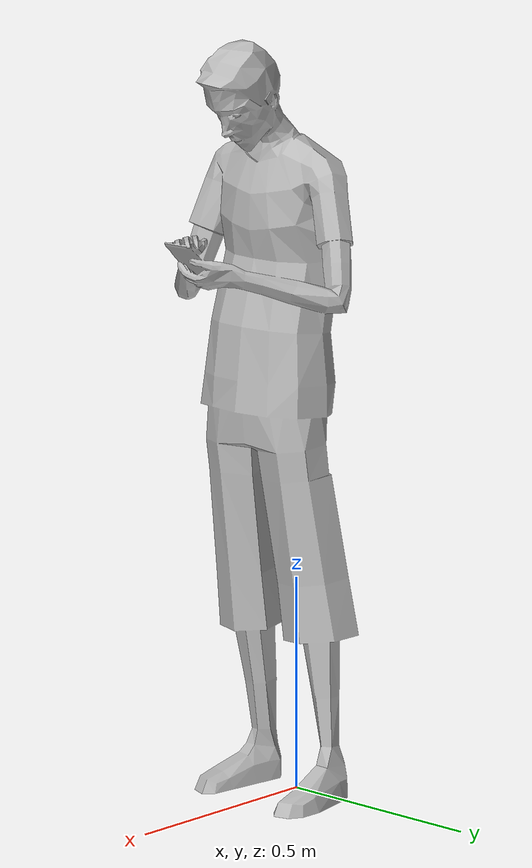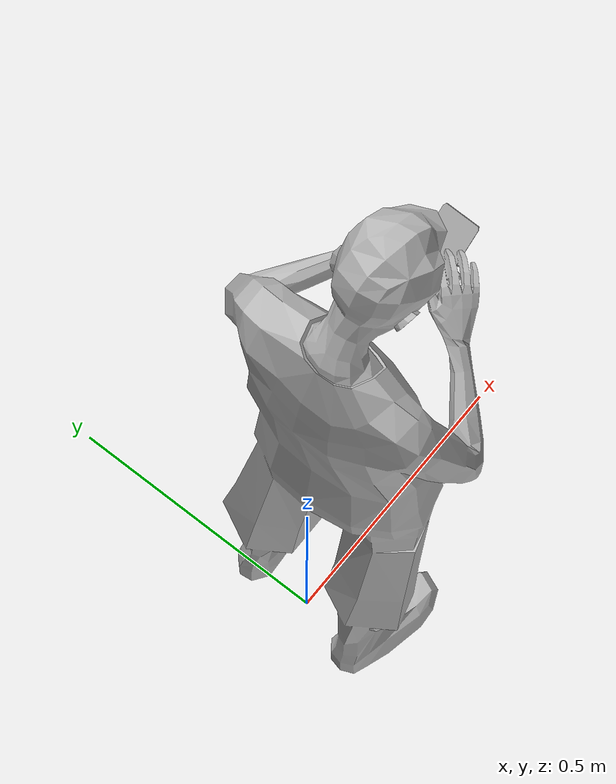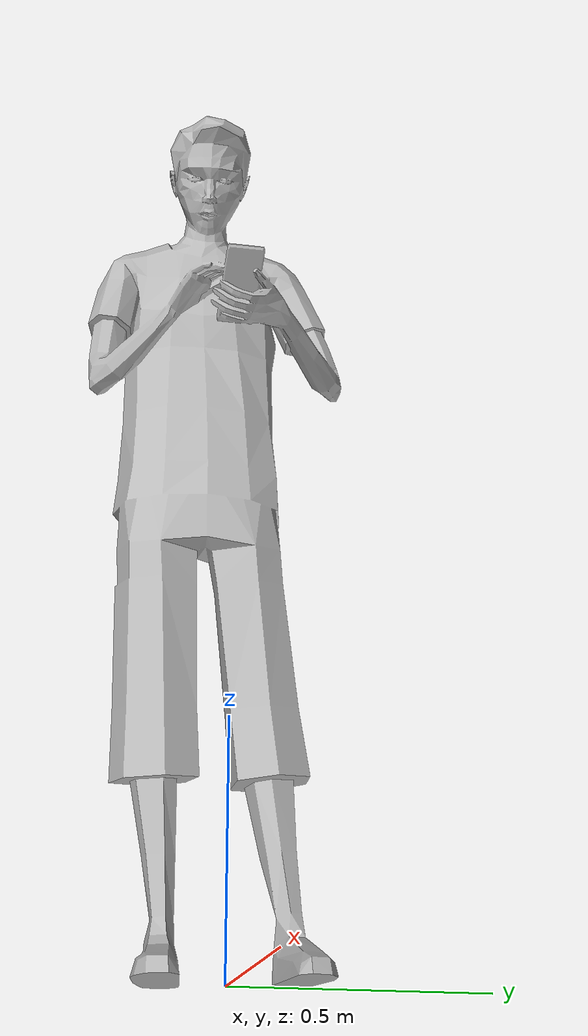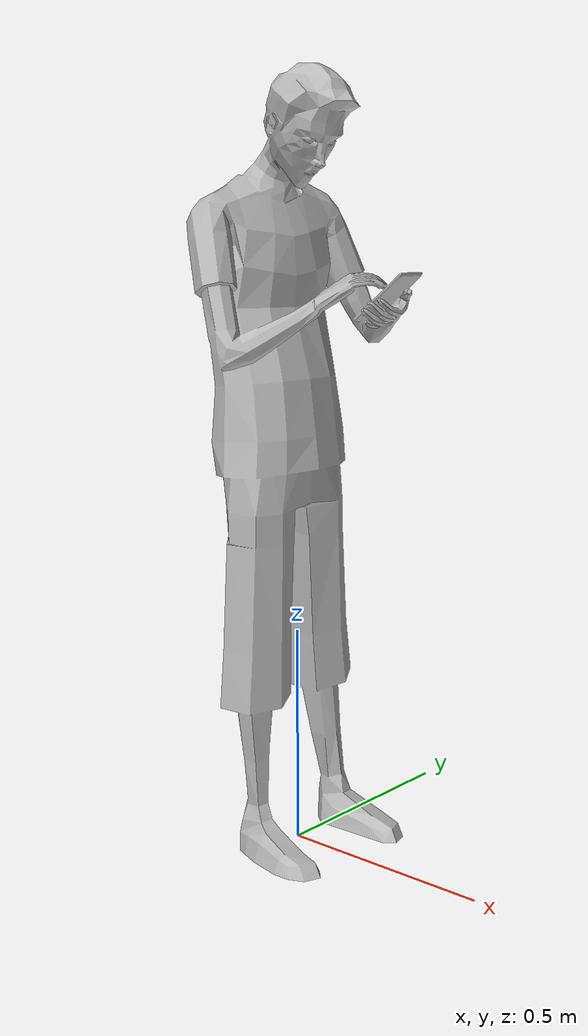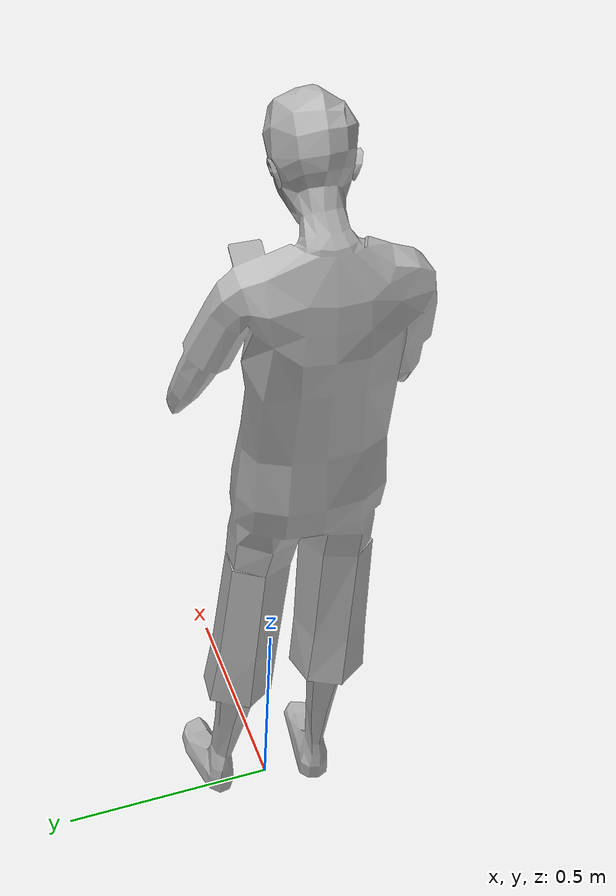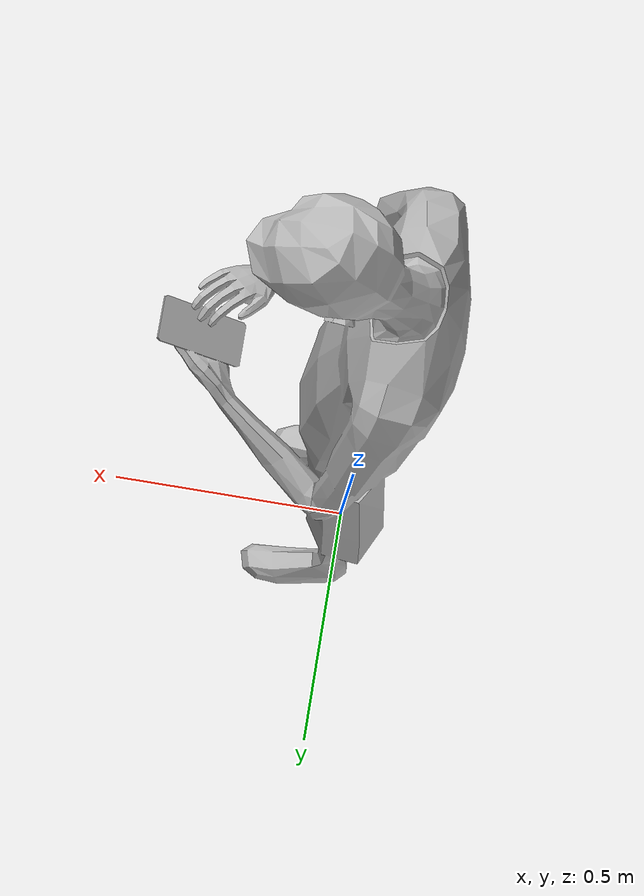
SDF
<?xml version='1.0' encoding='utf-8'?>
<sdf version="1.6">
  <model name="MaleVisitorOnPhone">
   <static>true</static>
    <link name="body">
      <pose>0 0 0 0 0 0</pose>

      <visual name="visual">
        <geometry>
          <mesh>
            <uri>model://MaleVisitorOnPhone/meshes/MaleVisitorStatic.obj</uri>
          </mesh>
        </geometry>
      </visual>

      <collision name="collision">
        <geometry>
          <mesh>
            <uri>model://MaleVisitorOnPhone/meshes/MaleVisitorStatic_Col.obj</uri>
          </mesh>
        </geometry>
      </collision>

    </link>
  </model>
</sdf>
